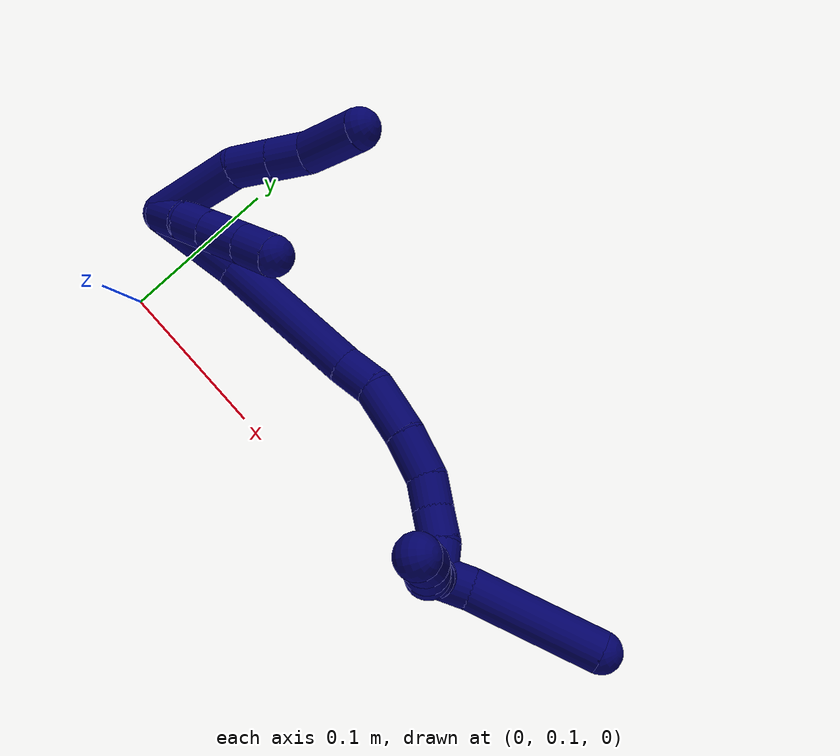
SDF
<sdf version="1.7">
 <world name="default">
  <model name="7">
   <static>0</static>
   <link name="7">
    <collision name="collision-cylinder-e_1_2_8">
     <pose>-0.000134 0.005935 0.029912 -0.195882 -0.004383 0.000431</pose>
     <geometry><cylinder><radius>0.0125</radius><length>0.06099</length></cylinder></geometry>
     <surface>
      <friction><ode><mu>1.16</mu><mu2>1.16</mu2><slip1>0</slip1><slip2>0</slip2></ode></friction>
      <contact><ode><kp>1e+06</kp><kd>1</kd><max_vel>0</max_vel><min_depth>0.001</min_depth></ode></contact>
     </surface>
    </collision>
    <visual name="visual-cylinder-e_1_2_8">
     <pose>-0.000134 0.005935 0.029912 -0.195882 -0.004383 0.000431</pose>
     <geometry><cylinder><radius>0.0125</radius><length>0.06099</length></cylinder></geometry>
     <material><ambient>0.003922 0 0.403922 1</ambient></material>
    </visual>
    <collision name="collision-cylinder-e_2_8_9">
     <pose>0.003409 0.013005 0.072339 -0.090421 0.284614 -0.012964</pose>
     <geometry><cylinder><radius>0.0125</radius><length>0.026187</length></cylinder></geometry>
     <surface>
      <friction><ode><mu>1.16</mu><mu2>1.16</mu2><slip1>0</slip1><slip2>0</slip2></ode></friction>
      <contact><ode><kp>1e+06</kp><kd>1</kd><max_vel>0</max_vel><min_depth>0.001</min_depth></ode></contact>
     </surface>
    </collision>
    <visual name="visual-cylinder-e_2_8_9">
     <pose>0.003409 0.013005 0.072339 -0.090421 0.284614 -0.012964</pose>
     <geometry><cylinder><radius>0.0125</radius><length>0.026187</length></cylinder></geometry>
     <material><ambient>0.003922 0 0.403922 1</ambient></material>
    </visual>
    <collision name="collision-cylinder-e_3_9_10">
     <pose>0.010475 0.015168 0.096018 -0.091812 0.293565 -0.013583</pose>
     <geometry><cylinder><radius>0.0125</radius><length>0.023424</length></cylinder></geometry>
     <surface>
      <friction><ode><mu>1.16</mu><mu2>1.16</mu2><slip1>0</slip1><slip2>0</slip2></ode></friction>
      <contact><ode><kp>1e+06</kp><kd>1</kd><max_vel>0</max_vel><min_depth>0.001</min_depth></ode></contact>
     </surface>
    </collision>
    <visual name="visual-cylinder-e_3_9_10">
     <pose>0.010475 0.015168 0.096018 -0.091812 0.293565 -0.013583</pose>
     <geometry><cylinder><radius>0.0125</radius><length>0.023424</length></cylinder></geometry>
     <material><ambient>0.003922 0 0.403922 1</ambient></material>
    </visual>
    <collision name="collision-cylinder-e_4_10_6">
     <pose>0.013828 0.015185 0.126855 0.051307 -0.001827 -4.7e-05</pose>
     <geometry><cylinder><radius>0.0125</radius><length>0.039399</length></cylinder></geometry>
     <surface>
      <friction><ode><mu>1.16</mu><mu2>1.16</mu2><slip1>0</slip1><slip2>0</slip2></ode></friction>
      <contact><ode><kp>1e+06</kp><kd>1</kd><max_vel>0</max_vel><min_depth>0.001</min_depth></ode></contact>
     </surface>
    </collision>
    <visual name="visual-cylinder-e_4_10_6">
     <pose>0.013828 0.015185 0.126855 0.051307 -0.001827 -4.7e-05</pose>
     <geometry><cylinder><radius>0.0125</radius><length>0.039399</length></cylinder></geometry>
     <material><ambient>0.003922 0 0.403922 1</ambient></material>
    </visual>
    <collision name="collision-cylinder-e_1_2_11">
     <pose>0.002692 -0.006018 0.011 0.500616 0.211484 0.054259</pose>
     <geometry><cylinder><radius>0.0125</radius><length>0.025648</length></cylinder></geometry>
     <surface>
      <friction><ode><mu>1.16</mu><mu2>1.16</mu2><slip1>0</slip1><slip2>0</slip2></ode></friction>
      <contact><ode><kp>1e+06</kp><kd>1</kd><max_vel>0</max_vel><min_depth>0.001</min_depth></ode></contact>
     </surface>
    </collision>
    <visual name="visual-cylinder-e_1_2_11">
     <pose>0.002692 -0.006018 0.011 0.500616 0.211484 0.054259</pose>
     <geometry><cylinder><radius>0.0125</radius><length>0.025648</length></cylinder></geometry>
     <material><ambient>0.003922 0 0.403922 1</ambient></material>
    </visual>
    <collision name="collision-cylinder-e_2_11_12">
     <pose>0.009967 -0.01605 0.031089 0.415908 0.43218 0.092572</pose>
     <geometry><cylinder><radius>0.0125</radius><length>0.021885</length></cylinder></geometry>
     <surface>
      <friction><ode><mu>1.16</mu><mu2>1.16</mu2><slip1>0</slip1><slip2>0</slip2></ode></friction>
      <contact><ode><kp>1e+06</kp><kd>1</kd><max_vel>0</max_vel><min_depth>0.001</min_depth></ode></contact>
     </surface>
    </collision>
    <visual name="visual-cylinder-e_2_11_12">
     <pose>0.009967 -0.01605 0.031089 0.415908 0.43218 0.092572</pose>
     <geometry><cylinder><radius>0.0125</radius><length>0.021885</length></cylinder></geometry>
     <material><ambient>0.003922 0 0.403922 1</ambient></material>
    </visual>
    <collision name="collision-cylinder-e_3_12_13">
     <pose>0.020645 -0.025387 0.052257 0.415018 0.432579 0.092457</pose>
     <geometry><cylinder><radius>0.0125</radius><length>0.029077</length></cylinder></geometry>
     <surface>
      <friction><ode><mu>1.16</mu><mu2>1.16</mu2><slip1>0</slip1><slip2>0</slip2></ode></friction>
      <contact><ode><kp>1e+06</kp><kd>1</kd><max_vel>0</max_vel><min_depth>0.001</min_depth></ode></contact>
     </surface>
    </collision>
    <visual name="visual-cylinder-e_3_12_13">
     <pose>0.020645 -0.025387 0.052257 0.415018 0.432579 0.092457</pose>
     <geometry><cylinder><radius>0.0125</radius><length>0.029077</length></cylinder></geometry>
     <material><ambient>0.003922 0 0.403922 1</ambient></material>
    </visual>
    <collision name="collision-cylinder-e_4_13_5">
     <pose>0.031355 -0.035339 0.074033 0.445497 0.405623 0.09309</pose>
     <geometry><cylinder><radius>0.0125</radius><length>0.02339</length></cylinder></geometry>
     <surface>
      <friction><ode><mu>1.16</mu><mu2>1.16</mu2><slip1>0</slip1><slip2>0</slip2></ode></friction>
      <contact><ode><kp>1e+06</kp><kd>1</kd><max_vel>0</max_vel><min_depth>0.001</min_depth></ode></contact>
     </surface>
    </collision>
    <visual name="visual-cylinder-e_4_13_5">
     <pose>0.031355 -0.035339 0.074033 0.445497 0.405623 0.09309</pose>
     <geometry><cylinder><radius>0.0125</radius><length>0.02339</length></cylinder></geometry>
     <material><ambient>0.003922 0 0.403922 1</ambient></material>
    </visual>
    <collision name="collision-cylinder-e_1_2_14">
     <pose>0.024627 -0.004109 0.010489 0.373375 1.14177 0.241433</pose>
     <geometry><cylinder><radius>0.0125</radius><length>0.054163</length></cylinder></geometry>
     <surface>
      <friction><ode><mu>1.16</mu><mu2>1.16</mu2><slip1>0</slip1><slip2>0</slip2></ode></friction>
      <contact><ode><kp>1e+06</kp><kd>1</kd><max_vel>0</max_vel><min_depth>0.001</min_depth></ode></contact>
     </surface>
    </collision>
    <visual name="visual-cylinder-e_1_2_14">
     <pose>0.024627 -0.004109 0.010489 0.373375 1.14177 0.241433</pose>
     <geometry><cylinder><radius>0.0125</radius><length>0.054163</length></cylinder></geometry>
     <material><ambient>0.003922 0 0.403922 1</ambient></material>
    </visual>
    <collision name="collision-cylinder-e_2_14_15">
     <pose>0.085943 -0.026424 0.045364 0.64131 0.878358 0.309547</pose>
     <geometry><cylinder><radius>0.0125</radius><length>0.095333</length></cylinder></geometry>
     <surface>
      <friction><ode><mu>1.16</mu><mu2>1.16</mu2><slip1>0</slip1><slip2>0</slip2></ode></friction>
      <contact><ode><kp>1e+06</kp><kd>1</kd><max_vel>0</max_vel><min_depth>0.001</min_depth></ode></contact>
     </surface>
    </collision>
    <visual name="visual-cylinder-e_2_14_15">
     <pose>0.085943 -0.026424 0.045364 0.64131 0.878358 0.309547</pose>
     <geometry><cylinder><radius>0.0125</radius><length>0.095333</length></cylinder></geometry>
     <material><ambient>0.003922 0 0.403922 1</ambient></material>
    </visual>
    <collision name="collision-cylinder-e_3_15_16">
     <pose>0.129853 -0.050502 0.078362 0.598403 0.605813 0.192209</pose>
     <geometry><cylinder><radius>0.0125</radius><length>0.025365</length></cylinder></geometry>
     <surface>
      <friction><ode><mu>1.16</mu><mu2>1.16</mu2><slip1>0</slip1><slip2>0</slip2></ode></friction>
      <contact><ode><kp>1e+06</kp><kd>1</kd><max_vel>0</max_vel><min_depth>0.001</min_depth></ode></contact>
     </surface>
    </collision>
    <visual name="visual-cylinder-e_3_15_16">
     <pose>0.129853 -0.050502 0.078362 0.598403 0.605813 0.192209</pose>
     <geometry><cylinder><radius>0.0125</radius><length>0.025365</length></cylinder></geometry>
     <material><ambient>0.003922 0 0.403922 1</ambient></material>
    </visual>
    <collision name="collision-cylinder-e_4_16_17">
     <pose>0.148111 -0.068007 0.094458 0.99925 0.673483 0.377601</pose>
     <geometry><cylinder><radius>0.0125</radius><length>0.035388</length></cylinder></geometry>
     <surface>
      <friction><ode><mu>1.16</mu><mu2>1.16</mu2><slip1>0</slip1><slip2>0</slip2></ode></friction>
      <contact><ode><kp>1e+06</kp><kd>1</kd><max_vel>0</max_vel><min_depth>0.001</min_depth></ode></contact>
     </surface>
    </collision>
    <visual name="visual-cylinder-e_4_16_17">
     <pose>0.148111 -0.068007 0.094458 0.99925 0.673483 0.377601</pose>
     <geometry><cylinder><radius>0.0125</radius><length>0.035388</length></cylinder></geometry>
     <material><ambient>0.003922 0 0.403922 1</ambient></material>
    </visual>
    <collision name="collision-cylinder-e_5_17_18">
     <pose>0.168807 -0.089787 0.106437 1.15356 0.716177 0.477626</pose>
     <geometry><cylinder><radius>0.0125</radius><length>0.02943</length></cylinder></geometry>
     <surface>
      <friction><ode><mu>1.16</mu><mu2>1.16</mu2><slip1>0</slip1><slip2>0</slip2></ode></friction>
      <contact><ode><kp>1e+06</kp><kd>1</kd><max_vel>0</max_vel><min_depth>0.001</min_depth></ode></contact>
     </surface>
    </collision>
    <visual name="visual-cylinder-e_5_17_18">
     <pose>0.168807 -0.089787 0.106437 1.15356 0.716177 0.477626</pose>
     <geometry><cylinder><radius>0.0125</radius><length>0.02943</length></cylinder></geometry>
     <material><ambient>0.003922 0 0.403922 1</ambient></material>
    </visual>
    <collision name="collision-cylinder-e_6_18_19">
     <pose>0.183599 -0.108568 0.112249 1.41984 0.531222 0.459324</pose>
     <geometry><cylinder><radius>0.0125</radius><length>0.020258</length></cylinder></geometry>
     <surface>
      <friction><ode><mu>1.16</mu><mu2>1.16</mu2><slip1>0</slip1><slip2>0</slip2></ode></friction>
      <contact><ode><kp>1e+06</kp><kd>1</kd><max_vel>0</max_vel><min_depth>0.001</min_depth></ode></contact>
     </surface>
    </collision>
    <visual name="visual-cylinder-e_6_18_19">
     <pose>0.183599 -0.108568 0.112249 1.41984 0.531222 0.459324</pose>
     <geometry><cylinder><radius>0.0125</radius><length>0.020258</length></cylinder></geometry>
     <material><ambient>0.003922 0 0.403922 1</ambient></material>
    </visual>
    <collision name="collision-cylinder-e_7_19_20">
     <pose>0.193061 -0.126004 0.115551 1.34857 0.447496 0.359821</pose>
     <geometry><cylinder><radius>0.0125</radius><length>0.020018</length></cylinder></geometry>
     <surface>
      <friction><ode><mu>1.16</mu><mu2>1.16</mu2><slip1>0</slip1><slip2>0</slip2></ode></friction>
      <contact><ode><kp>1e+06</kp><kd>1</kd><max_vel>0</max_vel><min_depth>0.001</min_depth></ode></contact>
     </surface>
    </collision>
    <visual name="visual-cylinder-e_7_19_20">
     <pose>0.193061 -0.126004 0.115551 1.34857 0.447496 0.359821</pose>
     <geometry><cylinder><radius>0.0125</radius><length>0.020018</length></cylinder></geometry>
     <material><ambient>0.003922 0 0.403922 1</ambient></material>
    </visual>
    <collision name="collision-cylinder-e_8_20_1">
     <pose>0.199756 -0.144545 0.117457 1.57922 0.238068 0.240062</pose>
     <geometry><cylinder><radius>0.0125</radius><length>0.020045</length></cylinder></geometry>
     <surface>
      <friction><ode><mu>1.16</mu><mu2>1.16</mu2><slip1>0</slip1><slip2>0</slip2></ode></friction>
      <contact><ode><kp>1e+06</kp><kd>1</kd><max_vel>0</max_vel><min_depth>0.001</min_depth></ode></contact>
     </surface>
    </collision>
    <visual name="visual-cylinder-e_8_20_1">
     <pose>0.199756 -0.144545 0.117457 1.57922 0.238068 0.240062</pose>
     <geometry><cylinder><radius>0.0125</radius><length>0.020045</length></cylinder></geometry>
     <material><ambient>0.003922 0 0.403922 1</ambient></material>
    </visual>
    <collision name="collision-cylinder-e_1_1_21">
     <pose>0.195335 -0.159673 0.122369 0.823407 -0.745642 -0.338301</pose>
     <geometry><cylinder><radius>0.0125</radius><length>0.02</length></cylinder></geometry>
     <surface>
      <friction><ode><mu>1.16</mu><mu2>1.16</mu2><slip1>0</slip1><slip2>0</slip2></ode></friction>
      <contact><ode><kp>1e+06</kp><kd>1</kd><max_vel>0</max_vel><min_depth>0.001</min_depth></ode></contact>
     </surface>
    </collision>
    <visual name="visual-cylinder-e_1_1_21">
     <pose>0.195335 -0.159673 0.122369 0.823407 -0.745642 -0.338301</pose>
     <geometry><cylinder><radius>0.0125</radius><length>0.02</length></cylinder></geometry>
     <material><ambient>0.003922 0 0.403922 1</ambient></material>
    </visual>
    <collision name="collision-cylinder-e_2_21_22">
     <pose>0.1815 -0.170142 0.13231 0.798676 -0.782417 -0.34468</pose>
     <geometry><cylinder><radius>0.0125</radius><length>0.02</length></cylinder></geometry>
     <surface>
      <friction><ode><mu>1.16</mu><mu2>1.16</mu2><slip1>0</slip1><slip2>0</slip2></ode></friction>
      <contact><ode><kp>1e+06</kp><kd>1</kd><max_vel>0</max_vel><min_depth>0.001</min_depth></ode></contact>
     </surface>
    </collision>
    <visual name="visual-cylinder-e_2_21_22">
     <pose>0.1815 -0.170142 0.13231 0.798676 -0.782417 -0.34468</pose>
     <geometry><cylinder><radius>0.0125</radius><length>0.02</length></cylinder></geometry>
     <material><ambient>0.003922 0 0.403922 1</ambient></material>
    </visual>
    <collision name="collision-cylinder-e_3_22_23">
     <pose>0.167391 -0.179025 0.143234 0.566635 -0.783779 -0.239493</pose>
     <geometry><cylinder><radius>0.0125</radius><length>0.02</length></cylinder></geometry>
     <surface>
      <friction><ode><mu>1.16</mu><mu2>1.16</mu2><slip1>0</slip1><slip2>0</slip2></ode></friction>
      <contact><ode><kp>1e+06</kp><kd>1</kd><max_vel>0</max_vel><min_depth>0.001</min_depth></ode></contact>
     </surface>
    </collision>
    <visual name="visual-cylinder-e_3_22_23">
     <pose>0.167391 -0.179025 0.143234 0.566635 -0.783779 -0.239493</pose>
     <geometry><cylinder><radius>0.0125</radius><length>0.02</length></cylinder></geometry>
     <material><ambient>0.003922 0 0.403922 1</ambient></material>
    </visual>
    <collision name="collision-cylinder-e_4_23_24">
     <pose>0.152864 -0.186064 0.15502 0.508183 -0.84312 -0.231882</pose>
     <geometry><cylinder><radius>0.0125</radius><length>0.02</length></cylinder></geometry>
     <surface>
      <friction><ode><mu>1.16</mu><mu2>1.16</mu2><slip1>0</slip1><slip2>0</slip2></ode></friction>
      <contact><ode><kp>1e+06</kp><kd>1</kd><max_vel>0</max_vel><min_depth>0.001</min_depth></ode></contact>
     </surface>
    </collision>
    <visual name="visual-cylinder-e_4_23_24">
     <pose>0.152864 -0.186064 0.15502 0.508183 -0.84312 -0.231882</pose>
     <geometry><cylinder><radius>0.0125</radius><length>0.02</length></cylinder></geometry>
     <material><ambient>0.003922 0 0.403922 1</ambient></material>
    </visual>
    <collision name="collision-cylinder-e_5_24_4">
     <pose>0.137457 -0.193291 0.165416 0.716263 -0.91739 -0.365523</pose>
     <geometry><cylinder><radius>0.0125</radius><length>0.02</length></cylinder></geometry>
     <surface>
      <friction><ode><mu>1.16</mu><mu2>1.16</mu2><slip1>0</slip1><slip2>0</slip2></ode></friction>
      <contact><ode><kp>1e+06</kp><kd>1</kd><max_vel>0</max_vel><min_depth>0.001</min_depth></ode></contact>
     </surface>
    </collision>
    <visual name="visual-cylinder-e_5_24_4">
     <pose>0.137457 -0.193291 0.165416 0.716263 -0.91739 -0.365523</pose>
     <geometry><cylinder><radius>0.0125</radius><length>0.02</length></cylinder></geometry>
     <material><ambient>0.003922 0 0.403922 1</ambient></material>
    </visual>
    <collision name="collision-cylinder-e_1_1_25">
     <pose>0.209947 -0.15433 0.123906 0.007013 0.875514 0.003282</pose>
     <geometry><cylinder><radius>0.0125</radius><length>0.020389</length></cylinder></geometry>
     <surface>
      <friction><ode><mu>1.16</mu><mu2>1.16</mu2><slip1>0</slip1><slip2>0</slip2></ode></friction>
      <contact><ode><kp>1e+06</kp><kd>1</kd><max_vel>0</max_vel><min_depth>0.001</min_depth></ode></contact>
     </surface>
    </collision>
    <visual name="visual-cylinder-e_1_1_25">
     <pose>0.209947 -0.15433 0.123906 0.007013 0.875514 0.003282</pose>
     <geometry><cylinder><radius>0.0125</radius><length>0.020389</length></cylinder></geometry>
     <material><ambient>0.003922 0 0.403922 1</ambient></material>
    </visual>
    <collision name="collision-cylinder-e_2_25_3">
     <pose>0.24649 -0.160514 0.157311 0.224537 0.805785 0.09603</pose>
     <geometry><cylinder><radius>0.0125</radius><length>0.079611</length></cylinder></geometry>
     <surface>
      <friction><ode><mu>1.16</mu><mu2>1.16</mu2><slip1>0</slip1><slip2>0</slip2></ode></friction>
      <contact><ode><kp>1e+06</kp><kd>1</kd><max_vel>0</max_vel><min_depth>0.001</min_depth></ode></contact>
     </surface>
    </collision>
    <visual name="visual-cylinder-e_2_25_3">
     <pose>0.24649 -0.160514 0.157311 0.224537 0.805785 0.09603</pose>
     <geometry><cylinder><radius>0.0125</radius><length>0.079611</length></cylinder></geometry>
     <material><ambient>0.003922 0 0.403922 1</ambient></material>
    </visual>
    <collision name="collision-sphere-3">
     <pose>0.275205 -0.166652 0.184186 0 -0 0</pose>
     <geometry><sphere><radius>0.0125</radius></sphere></geometry>
     <surface>
      <friction><ode><mu>1.16</mu><mu2>1.16</mu2><slip1>0</slip1><slip2>0</slip2></ode></friction>
      <contact><ode><kp>1e+06</kp><kd>1</kd><max_vel>0</max_vel><min_depth>0.001</min_depth></ode></contact>
     </surface>
    </collision>
    <visual name="visual-sphere-3">
     <pose>0.275205 -0.166652 0.184186 0 -0 0</pose>
     <geometry><sphere><radius>0.0125</radius></sphere></geometry>
     <material><ambient>0.003922 0 0.403922 1</ambient></material>
    </visual>
    <collision name="collision-sphere-25">
     <pose>0.217775 -0.154376 0.130436 0 -0 0</pose>
     <geometry><sphere><radius>0.0125</radius></sphere></geometry>
     <surface>
      <friction><ode><mu>1.16</mu><mu2>1.16</mu2><slip1>0</slip1><slip2>0</slip2></ode></friction>
      <contact><ode><kp>1e+06</kp><kd>1</kd><max_vel>0</max_vel><min_depth>0.001</min_depth></ode></contact>
     </surface>
    </collision>
    <visual name="visual-sphere-25">
     <pose>0.217775 -0.154376 0.130436 0 -0 0</pose>
     <geometry><sphere><radius>0.0125</radius></sphere></geometry>
     <material><ambient>0.003922 0 0.403922 1</ambient></material>
    </visual>
    <collision name="collision-sphere-4">
     <pose>0.129516 -0.197283 0.170001 0 -0 0</pose>
     <geometry><sphere><radius>0.0125</radius></sphere></geometry>
     <surface>
      <friction><ode><mu>1.16</mu><mu2>1.16</mu2><slip1>0</slip1><slip2>0</slip2></ode></friction>
      <contact><ode><kp>1e+06</kp><kd>1</kd><max_vel>0</max_vel><min_depth>0.001</min_depth></ode></contact>
     </surface>
    </collision>
    <visual name="visual-sphere-4">
     <pose>0.129516 -0.197283 0.170001 0 -0 0</pose>
     <geometry><sphere><radius>0.0125</radius></sphere></geometry>
     <material><ambient>0.003922 0 0.403922 1</ambient></material>
    </visual>
    <collision name="collision-sphere-24">
     <pose>0.145397 -0.1893 0.160831 0 -0 0</pose>
     <geometry><sphere><radius>0.0125</radius></sphere></geometry>
     <surface>
      <friction><ode><mu>1.16</mu><mu2>1.16</mu2><slip1>0</slip1><slip2>0</slip2></ode></friction>
      <contact><ode><kp>1e+06</kp><kd>1</kd><max_vel>0</max_vel><min_depth>0.001</min_depth></ode></contact>
     </surface>
    </collision>
    <visual name="visual-sphere-24">
     <pose>0.145397 -0.1893 0.160831 0 -0 0</pose>
     <geometry><sphere><radius>0.0125</radius></sphere></geometry>
     <material><ambient>0.003922 0 0.403922 1</ambient></material>
    </visual>
    <collision name="collision-sphere-23">
     <pose>0.160331 -0.182827 0.149209 0 -0 0</pose>
     <geometry><sphere><radius>0.0125</radius></sphere></geometry>
     <surface>
      <friction><ode><mu>1.16</mu><mu2>1.16</mu2><slip1>0</slip1><slip2>0</slip2></ode></friction>
      <contact><ode><kp>1e+06</kp><kd>1</kd><max_vel>0</max_vel><min_depth>0.001</min_depth></ode></contact>
     </surface>
    </collision>
    <visual name="visual-sphere-23">
     <pose>0.160331 -0.182827 0.149209 0 -0 0</pose>
     <geometry><sphere><radius>0.0125</radius></sphere></geometry>
     <material><ambient>0.003922 0 0.403922 1</ambient></material>
    </visual>
    <collision name="collision-sphere-22">
     <pose>0.17445 -0.175223 0.137258 0 -0 0</pose>
     <geometry><sphere><radius>0.0125</radius></sphere></geometry>
     <surface>
      <friction><ode><mu>1.16</mu><mu2>1.16</mu2><slip1>0</slip1><slip2>0</slip2></ode></friction>
      <contact><ode><kp>1e+06</kp><kd>1</kd><max_vel>0</max_vel><min_depth>0.001</min_depth></ode></contact>
     </surface>
    </collision>
    <visual name="visual-sphere-22">
     <pose>0.17445 -0.175223 0.137258 0 -0 0</pose>
     <geometry><sphere><radius>0.0125</radius></sphere></geometry>
     <material><ambient>0.003922 0 0.403922 1</ambient></material>
    </visual>
    <collision name="collision-sphere-21">
     <pose>0.18855 -0.165061 0.127363 0 -0 0</pose>
     <geometry><sphere><radius>0.0125</radius></sphere></geometry>
     <surface>
      <friction><ode><mu>1.16</mu><mu2>1.16</mu2><slip1>0</slip1><slip2>0</slip2></ode></friction>
      <contact><ode><kp>1e+06</kp><kd>1</kd><max_vel>0</max_vel><min_depth>0.001</min_depth></ode></contact>
     </surface>
    </collision>
    <visual name="visual-sphere-21">
     <pose>0.18855 -0.165061 0.127363 0 -0 0</pose>
     <geometry><sphere><radius>0.0125</radius></sphere></geometry>
     <material><ambient>0.003922 0 0.403922 1</ambient></material>
    </visual>
    <collision name="collision-sphere-1">
     <pose>0.202119 -0.154284 0.117375 0 -0 0</pose>
     <geometry><sphere><radius>0.0125</radius></sphere></geometry>
     <surface>
      <friction><ode><mu>1.16</mu><mu2>1.16</mu2><slip1>0</slip1><slip2>0</slip2></ode></friction>
      <contact><ode><kp>1e+06</kp><kd>1</kd><max_vel>0</max_vel><min_depth>0.001</min_depth></ode></contact>
     </surface>
    </collision>
    <visual name="visual-sphere-1">
     <pose>0.202119 -0.154284 0.117375 0 -0 0</pose>
     <geometry><sphere><radius>0.0125</radius></sphere></geometry>
     <material><ambient>0.003922 0 0.403922 1</ambient></material>
    </visual>
    <collision name="collision-sphere-11">
     <pose>0.005384 -0.012036 0.021999 0 -0 0</pose>
     <geometry><sphere><radius>0.0125</radius></sphere></geometry>
     <surface>
      <friction><ode><mu>1.16</mu><mu2>1.16</mu2><slip1>0</slip1><slip2>0</slip2></ode></friction>
      <contact><ode><kp>1e+06</kp><kd>1</kd><max_vel>0</max_vel><min_depth>0.001</min_depth></ode></contact>
     </surface>
    </collision>
    <visual name="visual-sphere-11">
     <pose>0.005384 -0.012036 0.021999 0 -0 0</pose>
     <geometry><sphere><radius>0.0125</radius></sphere></geometry>
     <material><ambient>0.003922 0 0.403922 1</ambient></material>
    </visual>
    <collision name="collision-sphere-6">
     <pose>0.013792 0.014175 0.146528 0 -0 0</pose>
     <geometry><sphere><radius>0.0125</radius></sphere></geometry>
     <surface>
      <friction><ode><mu>1.16</mu><mu2>1.16</mu2><slip1>0</slip1><slip2>0</slip2></ode></friction>
      <contact><ode><kp>1e+06</kp><kd>1</kd><max_vel>0</max_vel><min_depth>0.001</min_depth></ode></contact>
     </surface>
    </collision>
    <visual name="visual-sphere-6">
     <pose>0.013792 0.014175 0.146528 0 -0 0</pose>
     <geometry><sphere><radius>0.0125</radius></sphere></geometry>
     <material><ambient>0.003922 0 0.403922 1</ambient></material>
    </visual>
    <collision name="collision-sphere-10">
     <pose>0.013864 0.016196 0.107181 0 -0 0</pose>
     <geometry><sphere><radius>0.0125</radius></sphere></geometry>
     <surface>
      <friction><ode><mu>1.16</mu><mu2>1.16</mu2><slip1>0</slip1><slip2>0</slip2></ode></friction>
      <contact><ode><kp>1e+06</kp><kd>1</kd><max_vel>0</max_vel><min_depth>0.001</min_depth></ode></contact>
     </surface>
    </collision>
    <visual name="visual-sphere-10">
     <pose>0.013864 0.016196 0.107181 0 -0 0</pose>
     <geometry><sphere><radius>0.0125</radius></sphere></geometry>
     <material><ambient>0.003922 0 0.403922 1</ambient></material>
    </visual>
    <collision name="collision-sphere-9">
     <pose>0.007086 0.01414 0.084854 0 -0 0</pose>
     <geometry><sphere><radius>0.0125</radius></sphere></geometry>
     <surface>
      <friction><ode><mu>1.16</mu><mu2>1.16</mu2><slip1>0</slip1><slip2>0</slip2></ode></friction>
      <contact><ode><kp>1e+06</kp><kd>1</kd><max_vel>0</max_vel><min_depth>0.001</min_depth></ode></contact>
     </surface>
    </collision>
    <visual name="visual-sphere-9">
     <pose>0.007086 0.01414 0.084854 0 -0 0</pose>
     <geometry><sphere><radius>0.0125</radius></sphere></geometry>
     <material><ambient>0.003922 0 0.403922 1</ambient></material>
    </visual>
    <collision name="collision-sphere-2">
     <geometry><sphere><radius>0.0125</radius></sphere></geometry>
     <surface>
      <friction><ode><mu>1.16</mu><mu2>1.16</mu2><slip1>0</slip1><slip2>0</slip2></ode></friction>
      <contact><ode><kp>1e+06</kp><kd>1</kd><max_vel>0</max_vel><min_depth>0.001</min_depth></ode></contact>
     </surface>
    </collision>
    <visual name="visual-sphere-2">
     <geometry><sphere><radius>0.0125</radius></sphere></geometry>
     <material><ambient>0.003922 0 0.403922 1</ambient></material>
    </visual>
    <collision name="collision-sphere-19">
     <pose>0.18873 -0.117202 0.113562 0 -0 0</pose>
     <geometry><sphere><radius>0.0125</radius></sphere></geometry>
     <surface>
      <friction><ode><mu>1.16</mu><mu2>1.16</mu2><slip1>0</slip1><slip2>0</slip2></ode></friction>
      <contact><ode><kp>1e+06</kp><kd>1</kd><max_vel>0</max_vel><min_depth>0.001</min_depth></ode></contact>
     </surface>
    </collision>
    <visual name="visual-sphere-19">
     <pose>0.18873 -0.117202 0.113562 0 -0 0</pose>
     <geometry><sphere><radius>0.0125</radius></sphere></geometry>
     <material><ambient>0.003922 0 0.403922 1</ambient></material>
    </visual>
    <collision name="collision-sphere-8">
     <pose>-0.000267 0.01187 0.059823 0 -0 0</pose>
     <geometry><sphere><radius>0.0125</radius></sphere></geometry>
     <surface>
      <friction><ode><mu>1.16</mu><mu2>1.16</mu2><slip1>0</slip1><slip2>0</slip2></ode></friction>
      <contact><ode><kp>1e+06</kp><kd>1</kd><max_vel>0</max_vel><min_depth>0.001</min_depth></ode></contact>
     </surface>
    </collision>
    <visual name="visual-sphere-8">
     <pose>-0.000267 0.01187 0.059823 0 -0 0</pose>
     <geometry><sphere><radius>0.0125</radius></sphere></geometry>
     <material><ambient>0.003922 0 0.403922 1</ambient></material>
    </visual>
    <collision name="collision-sphere-12">
     <pose>0.01455 -0.020065 0.040178 0 -0 0</pose>
     <geometry><sphere><radius>0.0125</radius></sphere></geometry>
     <surface>
      <friction><ode><mu>1.16</mu><mu2>1.16</mu2><slip1>0</slip1><slip2>0</slip2></ode></friction>
      <contact><ode><kp>1e+06</kp><kd>1</kd><max_vel>0</max_vel><min_depth>0.001</min_depth></ode></contact>
     </surface>
    </collision>
    <visual name="visual-sphere-12">
     <pose>0.01455 -0.020065 0.040178 0 -0 0</pose>
     <geometry><sphere><radius>0.0125</radius></sphere></geometry>
     <material><ambient>0.003922 0 0.403922 1</ambient></material>
    </visual>
    <collision name="collision-sphere-13">
     <pose>0.02674 -0.030709 0.064335 0 -0 0</pose>
     <geometry><sphere><radius>0.0125</radius></sphere></geometry>
     <surface>
      <friction><ode><mu>1.16</mu><mu2>1.16</mu2><slip1>0</slip1><slip2>0</slip2></ode></friction>
      <contact><ode><kp>1e+06</kp><kd>1</kd><max_vel>0</max_vel><min_depth>0.001</min_depth></ode></contact>
     </surface>
    </collision>
    <visual name="visual-sphere-13">
     <pose>0.02674 -0.030709 0.064335 0 -0 0</pose>
     <geometry><sphere><radius>0.0125</radius></sphere></geometry>
     <material><ambient>0.003922 0 0.403922 1</ambient></material>
    </visual>
    <collision name="collision-sphere-5">
     <pose>0.035969 -0.03997 0.08373 0 -0 0</pose>
     <geometry><sphere><radius>0.0125</radius></sphere></geometry>
     <surface>
      <friction><ode><mu>1.16</mu><mu2>1.16</mu2><slip1>0</slip1><slip2>0</slip2></ode></friction>
      <contact><ode><kp>1e+06</kp><kd>1</kd><max_vel>0</max_vel><min_depth>0.001</min_depth></ode></contact>
     </surface>
    </collision>
    <visual name="visual-sphere-5">
     <pose>0.035969 -0.03997 0.08373 0 -0 0</pose>
     <geometry><sphere><radius>0.0125</radius></sphere></geometry>
     <material><ambient>0.003922 0 0.403922 1</ambient></material>
    </visual>
    <collision name="collision-sphere-14">
     <pose>0.049254 -0.008218 0.020979 0 -0 0</pose>
     <geometry><sphere><radius>0.0125</radius></sphere></geometry>
     <surface>
      <friction><ode><mu>1.16</mu><mu2>1.16</mu2><slip1>0</slip1><slip2>0</slip2></ode></friction>
      <contact><ode><kp>1e+06</kp><kd>1</kd><max_vel>0</max_vel><min_depth>0.001</min_depth></ode></contact>
     </surface>
    </collision>
    <visual name="visual-sphere-14">
     <pose>0.049254 -0.008218 0.020979 0 -0 0</pose>
     <geometry><sphere><radius>0.0125</radius></sphere></geometry>
     <material><ambient>0.003922 0 0.403922 1</ambient></material>
    </visual>
    <collision name="collision-sphere-15">
     <pose>0.122632 -0.044629 0.069749 0 -0 0</pose>
     <geometry><sphere><radius>0.0125</radius></sphere></geometry>
     <surface>
      <friction><ode><mu>1.16</mu><mu2>1.16</mu2><slip1>0</slip1><slip2>0</slip2></ode></friction>
      <contact><ode><kp>1e+06</kp><kd>1</kd><max_vel>0</max_vel><min_depth>0.001</min_depth></ode></contact>
     </surface>
    </collision>
    <visual name="visual-sphere-15">
     <pose>0.122632 -0.044629 0.069749 0 -0 0</pose>
     <geometry><sphere><radius>0.0125</radius></sphere></geometry>
     <material><ambient>0.003922 0 0.403922 1</ambient></material>
    </visual>
    <collision name="collision-sphere-16">
     <pose>0.137075 -0.056375 0.086976 0 -0 0</pose>
     <geometry><sphere><radius>0.0125</radius></sphere></geometry>
     <surface>
      <friction><ode><mu>1.16</mu><mu2>1.16</mu2><slip1>0</slip1><slip2>0</slip2></ode></friction>
      <contact><ode><kp>1e+06</kp><kd>1</kd><max_vel>0</max_vel><min_depth>0.001</min_depth></ode></contact>
     </surface>
    </collision>
    <visual name="visual-sphere-16">
     <pose>0.137075 -0.056375 0.086976 0 -0 0</pose>
     <geometry><sphere><radius>0.0125</radius></sphere></geometry>
     <material><ambient>0.003922 0 0.403922 1</ambient></material>
    </visual>
    <collision name="collision-sphere-17">
     <pose>0.159147 -0.07964 0.101939 0 -0 0</pose>
     <geometry><sphere><radius>0.0125</radius></sphere></geometry>
     <surface>
      <friction><ode><mu>1.16</mu><mu2>1.16</mu2><slip1>0</slip1><slip2>0</slip2></ode></friction>
      <contact><ode><kp>1e+06</kp><kd>1</kd><max_vel>0</max_vel><min_depth>0.001</min_depth></ode></contact>
     </surface>
    </collision>
    <visual name="visual-sphere-17">
     <pose>0.159147 -0.07964 0.101939 0 -0 0</pose>
     <geometry><sphere><radius>0.0125</radius></sphere></geometry>
     <material><ambient>0.003922 0 0.403922 1</ambient></material>
    </visual>
    <collision name="collision-sphere-18">
     <pose>0.178468 -0.099935 0.110935 0 -0 0</pose>
     <geometry><sphere><radius>0.0125</radius></sphere></geometry>
     <surface>
      <friction><ode><mu>1.16</mu><mu2>1.16</mu2><slip1>0</slip1><slip2>0</slip2></ode></friction>
      <contact><ode><kp>1e+06</kp><kd>1</kd><max_vel>0</max_vel><min_depth>0.001</min_depth></ode></contact>
     </surface>
    </collision>
    <visual name="visual-sphere-18">
     <pose>0.178468 -0.099935 0.110935 0 -0 0</pose>
     <geometry><sphere><radius>0.0125</radius></sphere></geometry>
     <material><ambient>0.003922 0 0.403922 1</ambient></material>
    </visual>
    <collision name="collision-sphere-20">
     <pose>0.197392 -0.134805 0.117539 0 -0 0</pose>
     <geometry><sphere><radius>0.0125</radius></sphere></geometry>
     <surface>
      <friction><ode><mu>1.16</mu><mu2>1.16</mu2><slip1>0</slip1><slip2>0</slip2></ode></friction>
      <contact><ode><kp>1e+06</kp><kd>1</kd><max_vel>0</max_vel><min_depth>0.001</min_depth></ode></contact>
     </surface>
    </collision>
    <visual name="visual-sphere-20">
     <pose>0.197392 -0.134805 0.117539 0 -0 0</pose>
     <geometry><sphere><radius>0.0125</radius></sphere></geometry>
     <material><ambient>0.003922 0 0.403922 1</ambient></material>
    </visual>
    <inertial>
     <pose>0.103607 -0.067726 0.086524 0 -0 0</pose>
     <mass>0.75</mass>
     <inertia>
      <ixx>0.000184</ixx>
      <ixy>0</ixy>
      <ixz>0</ixz>
      <iyy>0.00019</iyy>
      <iyz>0</iyz>
      <izz>-2.6e-05</izz>
     </inertia>
    </inertial>
   </link>
   <pose>-0.028247 0.148917 0.018559 -0.77834 0.530683 0.032209</pose>
  </model>
 </world>
</sdf>
